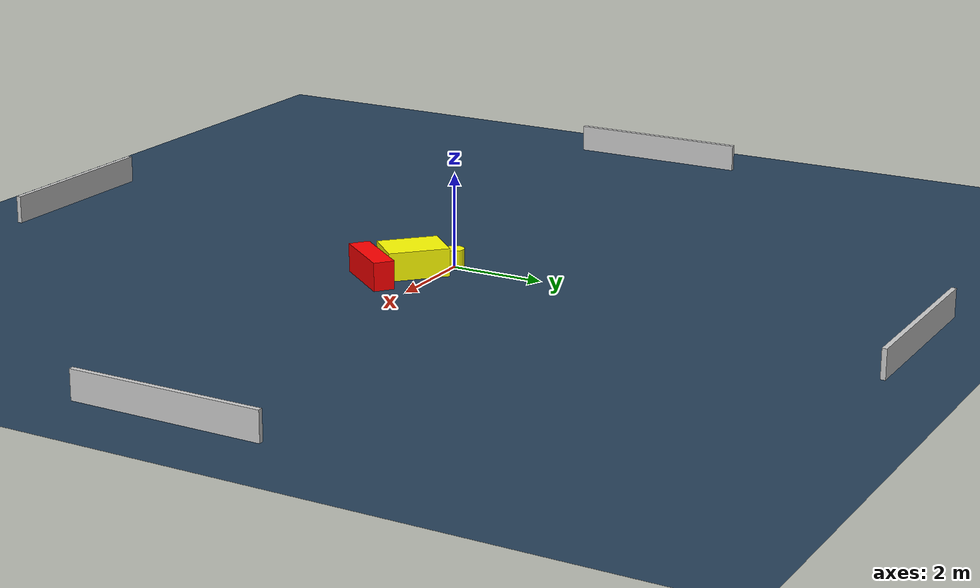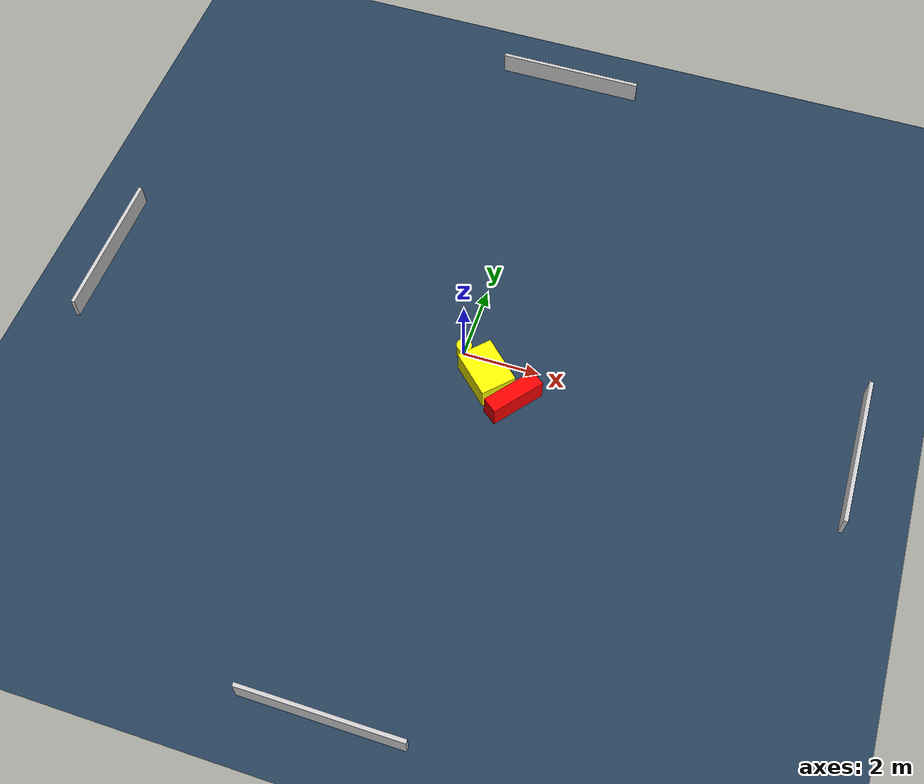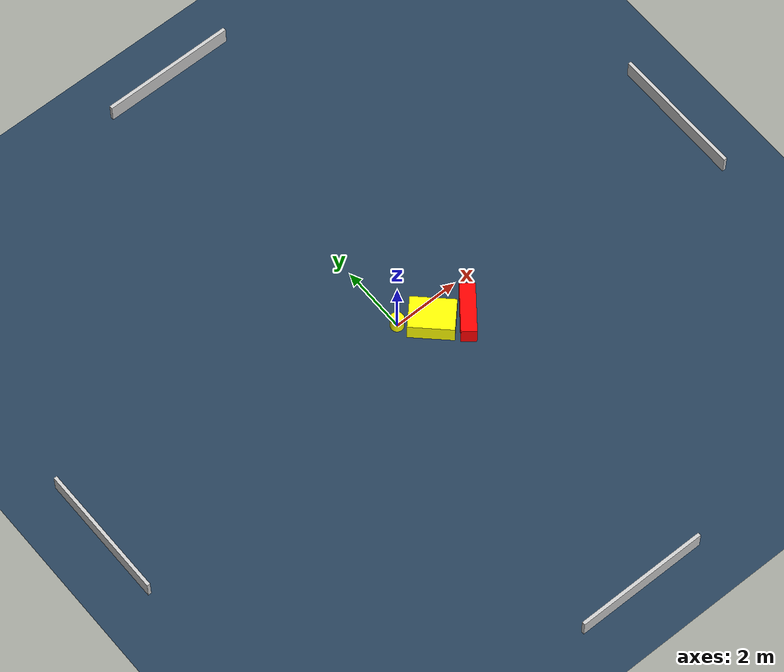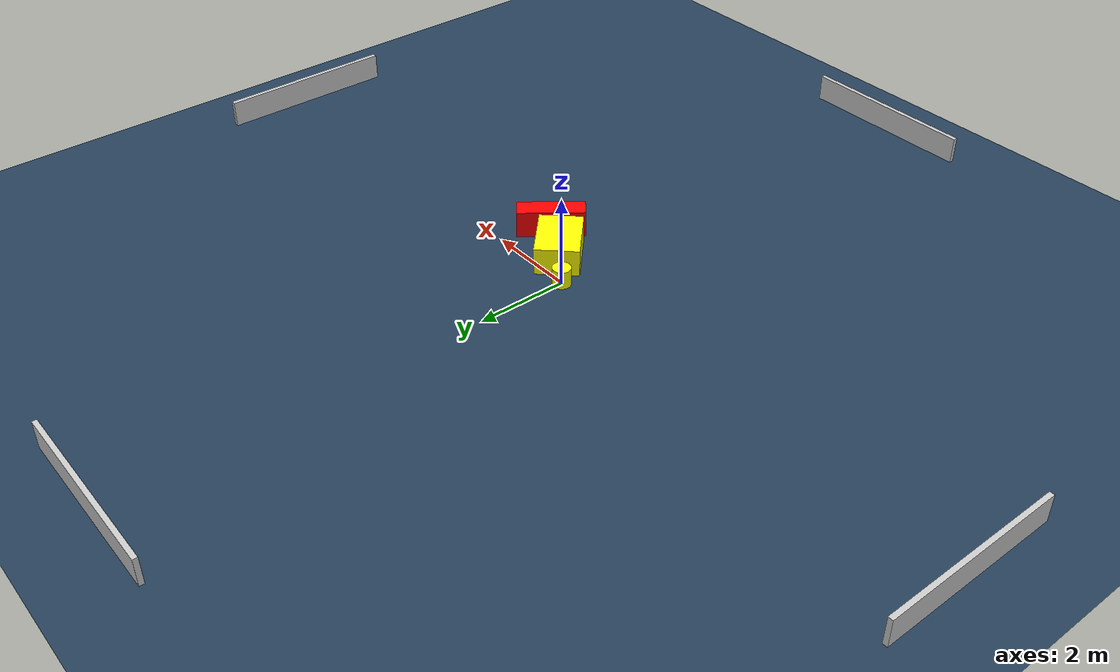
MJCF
<?xml version="1.0" ?>
<mujoco model="generated_environment">
  <option timestep="0.01" integrator="RK4" cone="elliptic"/>
  <default>
    <geom density="1"/>
  </default>
  <asset>
    <texture builtin="gradient" height="3072" name="skybox" rgb1="0.3 0.5 0.7" rgb2="0 0 0" type="skybox" width="512"/>
    <texture builtin="checker" height="300" name="groundplane" rgb1="0.2 0.3 0.4" rgb2="0.1 0.2 0.3" type="2d" width="300"/>
    <material name="groundplane" reflectance="0.2" texrepeat="5 5" texture="groundplane"/>
  </asset>
  <worldbody>
    <light dir="0 0 -1" directional="true" pos="0 0 1.5"/>
    <geom condim="3" friction="0.5 0.005 0.001" material="groundplane" name="floor" pos="0 0 0" size="0 0 0.05" type="plane"/>
    <body name="walls">
      <geom name="wall_1" condim="4" pos="-10.0 0.0 0.3" rgba="0.800000011920929 0.800000011920929 0.800000011920929 1.0" size="0.05 2.0 0.3" type="box"/>
      <geom name="wall_2" condim="4" pos="10.0 0.0 0.3" rgba="0.800000011920929 0.800000011920929 0.800000011920929 1.0" size="0.05 2.0 0.3" type="box"/>
      <geom name="wall_3" condim="4" pos="0.0 -10.0 0.3" rgba="0.800000011920929 0.800000011920929 0.800000011920929 1.0" size="2.0 0.05 0.3" type="box"/>
      <geom name="wall_4" condim="4" pos="0.0 10.0 0.3" rgba="0.800000011920929 0.800000011920929 0.800000011920929 1.0" size="2.0 0.05 0.3" type="box"/>
    </body>
    <body name="robot">
      <joint name="joint_x" type="slide" pos="0 0 0" axis="1 0 0"/>
      <joint name="joint_y" type="slide" pos="0 0 0" axis="0 1 0"/>
      <geom name="robot" type="cylinder" pos="0.0 0.0 0.2" size="0.2 0.2 0.0" mass="5.0" friction="1.0 0.005 0.0001" condim="4" rgba="1.0 1.0 0.0 1.0"/>
    </body>
    <body name="obstacle_1_movable">
      <geom name="obstacle_1_movable" condim="4" pos="0.76622753807061 -0.5536870990569055 0.3" euler="0 0 226.34200160414377" friction="0.0 0.005 0.001" rgba="1.0 1.0 0.0 1.0" size="0.4717258293970616 0.64764276165078 0.3" type="box" mass="0.1"/>
      <joint type="free"/>
    </body>
    <body name="obstacle_2_static">
      <geom name="obstacle_2_static" condim="4" pos="1.6246850940099231 -1.0320694157337522 0.3" euler="0 0 142.1045726608893" friction="0.0 0.005 0.001" rgba="1.0 0.0 0.0 1.0" size="0.22268742058326177 0.734051982790686 0.3" type="box"/>
    </body>
  </worldbody>
  <actuator>
    <motor name="actuator_x" joint="joint_x" gear="1" ctrlrange="-1 1"/>
    <motor name="actuator_y" joint="joint_y" gear="1" ctrlrange="-1 1"/>
  </actuator>
</mujoco>
